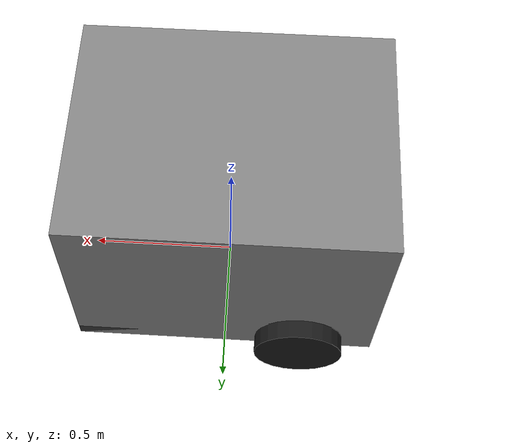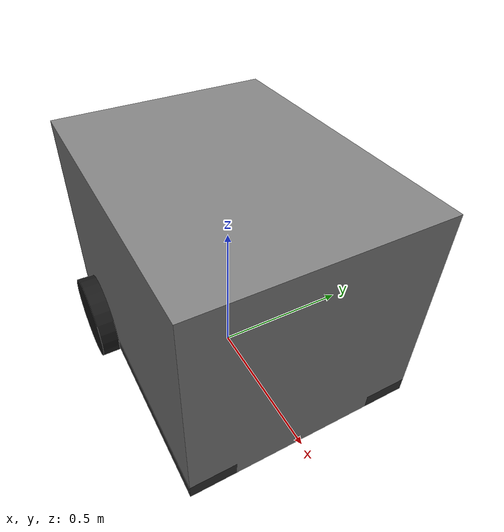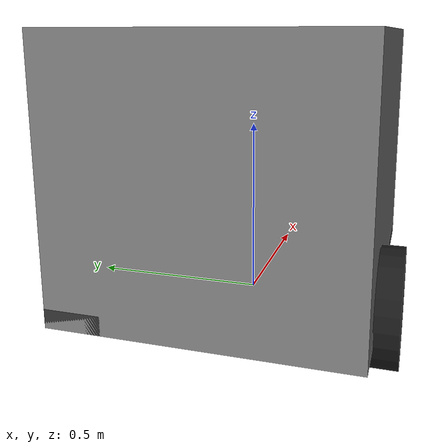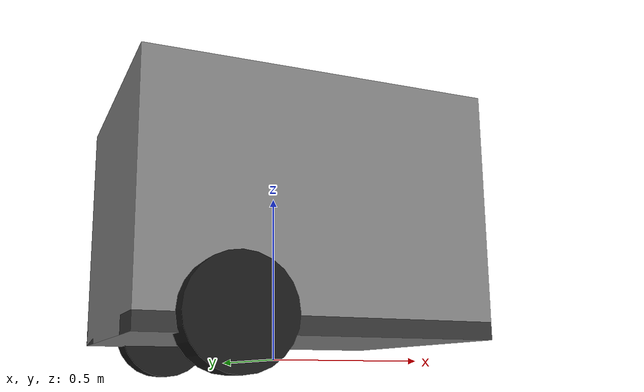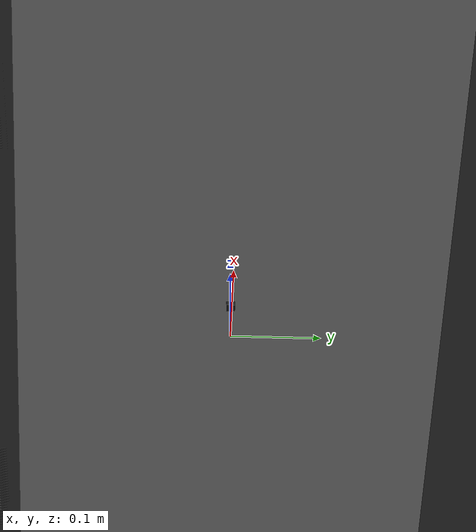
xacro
<?xml version="1.0"?>
<robot xmlns:xacro="http://www.ros.org/wiki/xacro" name="tracked_robot">

  <!-- Robot dimensions properties -->
  <xacro:property name="chassis_width" value="0.78" />   <!-- 780mm -->
  <xacro:property name="chassis_length" value="1.015" /> <!-- 1015mm -->
  <xacro:property name="chassis_height" value="0.72" />  <!-- 720mm -->
  <xacro:property name="ground_clearance" value="0.05" /> <!-- 5cm ground clearance -->

  <!-- Track properties -->
  <xacro:property name="track_width" value="0.15" />
  <xacro:property name="track_length" value="${chassis_length}" />
  <xacro:property name="track_thickness" value="0.05" />
  <xacro:property name="track_mass" value="10.0" />

  <!-- Wheel properties -->
  <xacro:property name="wheel_radius" value="0.15" />
  <xacro:property name="wheel_width" value="0.12" />
  <xacro:property name="wheel_mass" value="5.0" />
  <xacro:property name="wheel_joint_damping" value="0.1" />
  <xacro:property name="wheel_joint_friction" value="0.1" />

  <!-- Motor properties -->
  <xacro:property name="motor_radius" value="0.06" />
  <xacro:property name="motor_length" value="0.12" />
  <xacro:property name="motor_mass" value="3.0" />

  <!-- Component masses -->
  <xacro:property name="chassis_mass" value="50.0" />

  <!-- Use the built-in pi constant from xacro -->

  <!-- Inertia macros -->
  <xacro:macro name="box_inertia" params="m x y z">
    <inertia
      ixx="${m*(y*y+z*z)/12}"
      ixy="0"
      ixz="0"
      iyy="${m*(x*x+z*z)/12}"
      iyz="0"
      izz="${m*(x*x+y*y)/12}" />
  </xacro:macro>

  <xacro:macro name="cylinder_inertia" params="m r h">
    <inertia
      ixx="${m*(3*r*r+h*h)/12}"
      ixy="0"
      ixz="0"
      iyy="${m*(3*r*r+h*h)/12}"
      iyz="0"
      izz="${m*r*r/2}" />
  </xacro:macro>

  <!-- Material properties -->
  <material name="black">
    <color rgba="0.1 0.1 0.1 1.0"/>
  </material>

  <material name="dark_grey">
    <color rgba="0.2 0.2 0.2 1.0"/>
  </material>

  <material name="grey">
    <color rgba="0.5 0.5 0.5 1.0"/>
  </material>

  <material name="blue">
    <color rgba="0.0 0.0 0.8 1.0"/>
  </material>

  <material name="green">
    <color rgba="0.0 0.8 0.0 1.0"/>
  </material>

  <!-- Base link (robot center) -->
  <link name="base_link">
    <visual>
      <origin xyz="0 0 0" rpy="0 0 0" />
      <geometry>
        <box size="0.01 0.01 0.01" />
      </geometry>
      <material name="black"/>
    </visual>
    <collision>
      <origin xyz="0 0 0" rpy="0 0 0" />
      <geometry>
        <box size="0.01 0.01 0.01" />
      </geometry>
    </collision>
    <inertial>
      <mass value="0.01" />
      <inertia ixx="0.0001" ixy="0.0" ixz="0.0" iyy="0.0001" iyz="0.0" izz="0.0001" />
    </inertial>
  </link>

  <!-- Robot Footprint -->
  <link name="base_footprint">
    <visual>
      <origin xyz="0 0 0" rpy="0 0 0" />
      <geometry>
        <box size="0.001 0.001 0.001" />
      </geometry>
      <material name="black" />
    </visual>
    <collision>
      <origin xyz="0 0 0" rpy="0 0 0" />
      <geometry>
        <box size="0.001 0.001 0.001" />
      </geometry>
    </collision>
    <inertial>
      <mass value="0.0001" />
      <inertia ixx="0.0001" ixy="0.0" ixz="0.0" iyy="0.0001" iyz="0.0" izz="0.0001" />
    </inertial>
  </link>

  <joint name="base_footprint_to_base_link" type="fixed">
    <parent link="base_footprint" />
    <child link="base_link" />
    <origin xyz="0 0 ${ground_clearance}" rpy="0 0 0" />
  </joint>

  <!-- Main chassis body -->
  <link name="chassis_link">
    <visual>
      <origin xyz="0 0 0" rpy="0 0 0"/>
      <geometry>
        <box size="${chassis_length} ${chassis_width} ${chassis_height}"/>
      </geometry>
      <material name="grey"/>
    </visual>
    <collision>
      <origin xyz="0 0 0" rpy="0 0 0"/>
      <geometry>
        <box size="${chassis_length} ${chassis_width} ${chassis_height}"/>
      </geometry>
    </collision>
    <inertial>
      <mass value="${chassis_mass}"/>
      <xacro:box_inertia m="${chassis_mass}" x="${chassis_length}" y="${chassis_width}" z="${chassis_height}"/>
    </inertial>
  </link>

  <joint name="chassis_joint" type="fixed">
    <parent link="base_link"/>
    <child link="chassis_link"/>
    <origin xyz="0 0 ${chassis_height/2}" rpy="0 0 0"/>
  </joint>

  <!-- Left track assembly -->
  <link name="left_track_link">
    <visual>
      <origin xyz="0 0 0" rpy="0 0 0"/>
      <geometry>
        <box size="${track_length} ${track_width} ${track_thickness}"/>
      </geometry>
      <material name="dark_grey"/>
    </visual>
    <collision>
      <origin xyz="0 0 0" rpy="0 0 0"/>
      <geometry>
        <box size="${track_length} ${track_width} ${track_thickness}"/>
      </geometry>
    </collision>
    <inertial>
      <mass value="${track_mass}"/>
      <xacro:box_inertia m="${track_mass}" x="${track_length}" y="${track_width}" z="${track_thickness}"/>
    </inertial>
  </link>

  <joint name="left_track_joint" type="fixed">
    <parent link="chassis_link"/>
    <child link="left_track_link"/>
    <origin xyz="0 ${chassis_width/2 - track_width/2} ${-chassis_height/2 - track_thickness/2 + ground_clearance}" rpy="0 0 0"/>
  </joint>

  <!-- Right track assembly -->
  <link name="right_track_link">
    <visual>
      <origin xyz="0 0 0" rpy="0 0 0"/>
      <geometry>
        <box size="${track_length} ${track_width} ${track_thickness}"/>
      </geometry>
      <material name="dark_grey"/>
    </visual>
    <collision>
      <origin xyz="0 0 0" rpy="0 0 0"/>
      <geometry>
        <box size="${track_length} ${track_width} ${track_thickness}"/>
      </geometry>
    </collision>
    <inertial>
      <mass value="${track_mass}"/>
      <xacro:box_inertia m="${track_mass}" x="${track_length}" y="${track_width}" z="${track_thickness}"/>
    </inertial>
  </link>

  <joint name="right_track_joint" type="fixed">
    <parent link="chassis_link"/>
    <child link="right_track_link"/>
    <origin xyz="0 ${-chassis_width/2 + track_width/2} ${-chassis_height/2 - track_thickness/2 + ground_clearance}" rpy="0 0 0"/>
  </joint>

  <!-- Left drive wheel -->
  <link name="left_wheel_link">
    <visual>
      <origin xyz="0 0 0" rpy="${pi/2} 0 0"/>
      <geometry>
        <cylinder radius="${wheel_radius}" length="${wheel_width}"/>
      </geometry>
      <material name="black"/>
    </visual>
    <collision>
      <origin xyz="0 0 0" rpy="${pi/2} 0 0"/>
      <geometry>
        <cylinder radius="${wheel_radius}" length="${wheel_width}"/>
      </geometry>
    </collision>
    <inertial>
      <mass value="${wheel_mass}"/>
      <xacro:cylinder_inertia m="${wheel_mass}" r="${wheel_radius}" h="${wheel_width}"/>
    </inertial>
  </link>

  <joint name="left_wheel_joint" type="continuous">
    <parent link="chassis_link"/>
    <child link="left_wheel_link"/>
    <origin xyz="${-chassis_length/4} ${chassis_width/2} ${-chassis_height/2 + ground_clearance}" rpy="0 0 0"/>
    <axis xyz="0 1 0"/>
    <dynamics damping="${wheel_joint_damping}" friction="${wheel_joint_friction}"/>
  </joint>

  <!-- Right drive wheel -->
  <link name="right_wheel_link">
    <visual>
      <origin xyz="0 0 0" rpy="${pi/2} 0 0"/>
      <geometry>
        <cylinder radius="${wheel_radius}" length="${wheel_width}"/>
      </geometry>
      <material name="black"/>
    </visual>
    <collision>
      <origin xyz="0 0 0" rpy="${pi/2} 0 0"/>
      <geometry>
        <cylinder radius="${wheel_radius}" length="${wheel_width}"/>
      </geometry>
    </collision>
    <inertial>
      <mass value="${wheel_mass}"/>
      <xacro:cylinder_inertia m="${wheel_mass}" r="${wheel_radius}" h="${wheel_width}"/>
    </inertial>
  </link>

  <joint name="right_wheel_joint" type="continuous">
    <parent link="chassis_link"/>
    <child link="right_wheel_link"/>
    <origin xyz="${-chassis_length/4} ${-chassis_width/2} ${-chassis_height/2 + ground_clearance}" rpy="0 0 0"/>
    <axis xyz="0 1 0"/>
    <dynamics damping="${wheel_joint_damping}" friction="${wheel_joint_friction}"/>
  </joint>

  <!-- Jetson Orin NX -->
  <link name="jetson_link">
    <visual>
      <origin xyz="0 0 0" rpy="0 0 0" />
      <geometry>
        <box size="0.12 0.18 0.03" />
      </geometry>
      <material name="green"/>
    </visual>
    <collision>
      <origin xyz="0 0 0" rpy="0 0 0" />
      <geometry>
        <box size="0.12 0.18 0.03" />
      </geometry>
    </collision>
    <inertial>
      <mass value="0.5" />
      <xacro:box_inertia m="0.5" x="0.12" y="0.18" z="0.03" />
    </inertial>
  </link>

  <joint name="jetson_joint" type="fixed">
    <parent link="chassis_link" />
    <child link="jetson_link" />
    <origin xyz="0 0 ${chassis_height/2 - 0.05}" rpy="0 0 0" />
  </joint>

  <!-- ODrive motor controller -->
  <link name="odrive_link">
    <visual>
      <origin xyz="0 0 0" rpy="0 0 0"/>
      <geometry>
        <box size="0.12 0.08 0.03"/>
      </geometry>
      <material name="blue"/>
    </visual>
    <collision>
      <origin xyz="0 0 0" rpy="0 0 0"/>
      <geometry>
        <box size="0.12 0.08 0.03"/>
      </geometry>
    </collision>
    <inertial>
      <mass value="0.5"/>
      <xacro:box_inertia m="0.5" x="0.12" y="0.08" z="0.03"/>
    </inertial>
  </link>

  <joint name="odrive_joint" type="fixed">
    <parent link="chassis_link"/>
    <child link="odrive_link"/>
    <origin xyz="${-chassis_length/4} 0 ${-chassis_height/2 + 0.1}" rpy="0 0 0"/>
  </joint>

</robot>
